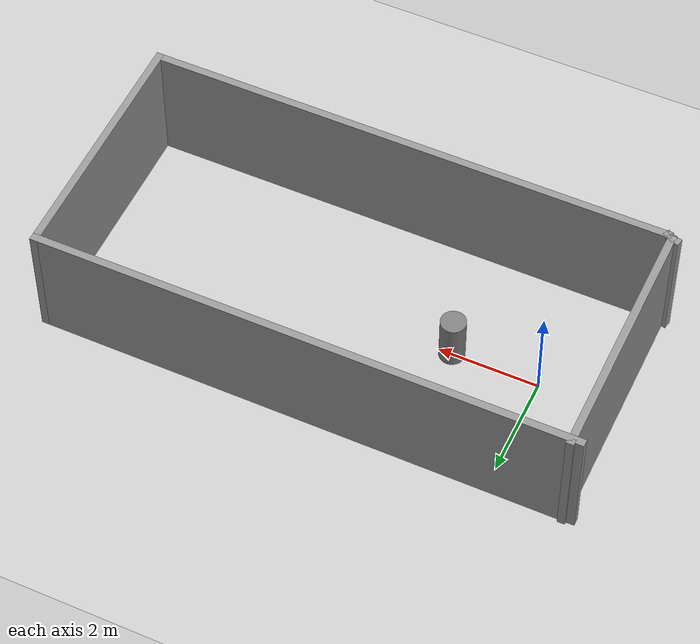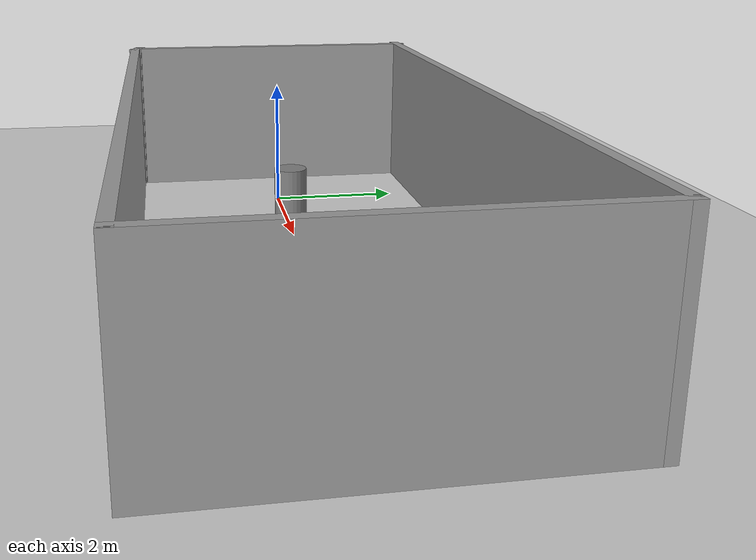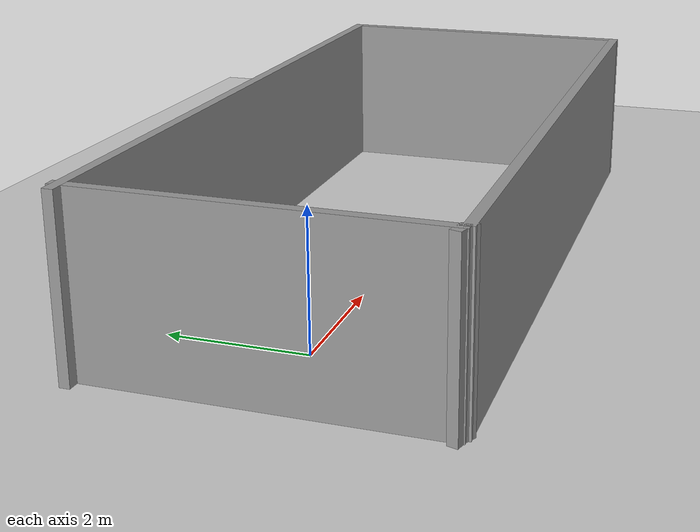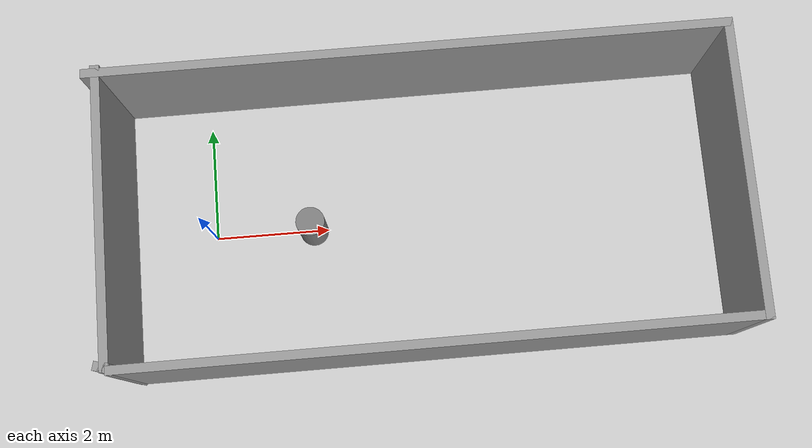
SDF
<sdf version="1.7">
 <world name="default">
  <light name="sun" type="directional">
   <pose>0 0 10 0 -0 0</pose>
   <diffuse>0.8 0.8 0.8 1</diffuse>
   <specular>0.2 0.2 0.2 1</specular>
   <attenuation>
    <range>1000</range>
    <constant>0.9</constant>
    <linear>0.01</linear>
    <quadratic>0.001</quadratic>
   </attenuation>
   <direction>-0.5 0.1 -0.9</direction>
   <spot><inner_angle>0</inner_angle><outer_angle>0</outer_angle><falloff>0</falloff></spot>
  </light>
  <model name="ground_plane">
   <static>1</static>
   <link name="link">
    <collision name="collision">
     <geometry><plane><normal>0 0 1</normal><size>100 100</size></plane></geometry>
     <surface><friction><ode><mu>100</mu><mu2>50</mu2></ode></friction></surface>
    </collision>
    <visual name="visual">
     <cast_shadows>0</cast_shadows>
     <geometry><plane><normal>0 0 1</normal><size>100 100</size></plane></geometry>
     <material>
      <script><uri>file://media/materials/scripts/gazebo.material</uri><name>Gazebo/Grey</name></script>
     </material>
    </visual>
   </link>
  </model>
  <gravity>0 0 -9.8</gravity>
  <magnetic_field>6e-06 2.3e-05 -4.2e-05</magnetic_field>
  <atmosphere type="adiabatic"/>
  <physics type="ode">
   <max_step_size>0.001</max_step_size>
   <real_time_factor>1</real_time_factor>
   <real_time_update_rate>1000</real_time_update_rate>
  </physics>
  <scene><ambient>0.4 0.4 0.4 1</ambient><background>0.7 0.7 0.7 1</background><shadows>1</shadows></scene>
  <spherical_coordinates>
   <surface_model>EARTH_WGS84</surface_model>
   <latitude_deg>0</latitude_deg>
   <longitude_deg>0</longitude_deg>
   <elevation>0</elevation>
   <heading_deg>0</heading_deg>
  </spherical_coordinates>
  <model name="house_1">
   <pose>3.63787 0.04039 0 0 -0 0</pose>
   <link name="Wall_28">
    <collision name="Wall_28_Collision">
     <geometry><box><size>10.5 0.15 2.5</size></box></geometry>
     <pose>0 0 1.25 0 -0 0</pose>
    </collision>
    <visual name="Wall_28_Visual">
     <pose>0 0 1.25 0 -0 0</pose>
     <geometry><box><size>10.5 0.15 2.5</size></box></geometry>
     <material>
      <script><uri>file://media/materials/scripts/gazebo.material</uri><name>Gazebo/Grey</name></script>
      <ambient>1 1 1 1</ambient>
     </material>
     <meta><layer>0</layer></meta>
    </visual>
    <pose>0.125 -2.43627 0 0 -0 0</pose>
   </link>
   <link name="Wall_29">
    <collision name="Wall_29_Collision">
     <geometry><box><size>5 0.15 2.5</size></box></geometry>
     <pose>0 0 1.25 0 -0 0</pose>
    </collision>
    <visual name="Wall_29_Visual">
     <pose>0 0 1.25 0 -0 0</pose>
     <geometry><box><size>5 0.15 2.5</size></box></geometry>
     <material>
      <script><uri>file://media/materials/scripts/gazebo.material</uri><name>Gazebo/Grey</name></script>
      <ambient>1 1 1 1</ambient>
     </material>
     <meta><layer>0</layer></meta>
    </visual>
    <pose>5.3 -0.011274 0 0 -0 1.5708</pose>
   </link>
   <link name="Wall_30">
    <collision name="Wall_30_Collision">
     <geometry><box><size>10.75 0.15 2.5</size></box></geometry>
     <pose>0 0 1.25 0 -0 0</pose>
    </collision>
    <visual name="Wall_30_Visual">
     <pose>0 0 1.25 0 -0 0</pose>
     <geometry><box><size>10.75 0.15 2.5</size></box></geometry>
     <material>
      <script><uri>file://media/materials/scripts/gazebo.material</uri><name>Gazebo/Grey</name></script>
      <ambient>1 1 1 1</ambient>
     </material>
     <meta><layer>0</layer></meta>
    </visual>
    <pose>-0 2.41373 0 0 -0 3.14159</pose>
   </link>
   <link name="Wall_32">
    <collision name="Wall_32_Collision">
     <geometry><box><size>0.25 0.15 2.5</size></box></geometry>
     <pose>0 0 1.25 0 -0 0</pose>
    </collision>
    <visual name="Wall_32_Visual">
     <pose>0 0 1.25 0 -0 0</pose>
     <geometry><box><size>0.25 0.15 2.5</size></box></geometry>
     <material>
      <script><uri>file://media/materials/scripts/gazebo.material</uri><name>Gazebo/Grey</name></script>
      <ambient>1 1 1 1</ambient>
     </material>
     <meta><layer>0</layer></meta>
    </visual>
    <pose>-5.0933 -2.41127 0 0 -0 2.61799</pose>
   </link>
   <link name="Wall_33">
    <collision name="Wall_33_Collision">
     <geometry><box><size>0.15 0.15 2.5</size></box></geometry>
     <pose>0 0 1.25 0 -0 0</pose>
    </collision>
    <visual name="Wall_33_Visual">
     <pose>0 0 1.25 0 -0 0</pose>
     <geometry><box><size>0.15 0.15 2.5</size></box></geometry>
     <material>
      <script><uri>file://media/materials/scripts/gazebo.material</uri><name>Gazebo/Grey</name></script>
      <ambient>1 1 1 1</ambient>
     </material>
     <meta><layer>0</layer></meta>
    </visual>
    <pose>-5.1366 -2.38627 0 0 -0 0</pose>
   </link>
   <link name="Wall_34">
    <collision name="Wall_34_Collision">
     <geometry><box><size>0.25 0.15 2.5</size></box></geometry>
     <pose>0 0 1.25 0 -0 0</pose>
    </collision>
    <visual name="Wall_34_Visual">
     <pose>0 0 1.25 0 -0 0</pose>
     <geometry><box><size>0.25 0.15 2.5</size></box></geometry>
     <material>
      <script><uri>file://media/materials/scripts/gazebo.material</uri><name>Gazebo/Grey</name></script>
      <ambient>1 1 1 1</ambient>
     </material>
     <meta><layer>0</layer></meta>
    </visual>
    <pose>-5.1849 -2.37333 0 0 -0 2.87979</pose>
   </link>
   <link name="Wall_36">
    <collision name="Wall_36_Collision">
     <geometry><box><size>5 0.15 2.5</size></box></geometry>
     <pose>0 0 1.25 0 -0 0</pose>
    </collision>
    <visual name="Wall_36_Visual">
     <pose>0 0 1.25 0 -0 0</pose>
     <geometry><box><size>5 0.15 2.5</size></box></geometry>
     <material>
      <script><uri>file://media/materials/scripts/gazebo.material</uri><name>Gazebo/Grey</name></script>
      <ambient>1 1 1 1</ambient>
     </material>
     <meta><layer>0</layer></meta>
    </visual>
    <pose>-5.1366 0.038726 0 0 -0 1.5708</pose>
   </link>
   <static>1</static>
  </model>
  <model name="cylinder_target">
   <link name="link">
    <inertial>
     <mass>1</mass>
     <inertia><ixx>0.145833</ixx><ixy>0</ixy><ixz>0</ixz><iyy>0.145833</iyy><iyz>0</iyz><izz>0.125</izz></inertia>
    </inertial>
    <collision name="cylinder">
     <laser_retro>255</laser_retro>
     <geometry><cylinder><radius>0.25</radius><length>1</length></cylinder></geometry>
    </collision>
    <visual name="visual">
     <laser_retro>255</laser_retro>
     <geometry><cylinder><radius>0.25</radius><length>1</length></cylinder></geometry>
     <material>
      <ambient>0.5 0.5 0.5 1</ambient>
      <diffuse>0.5 0.5 0.5 1</diffuse>
      <specular>0.1 0.1 0.1 1</specular>
      <emissive>0 0 0 1</emissive>
     </material>
    </visual>
   </link>
   <pose>1.73389 -0.00804 0.499999 0 -0 0</pose>
  </model>
 </world>
</sdf>
